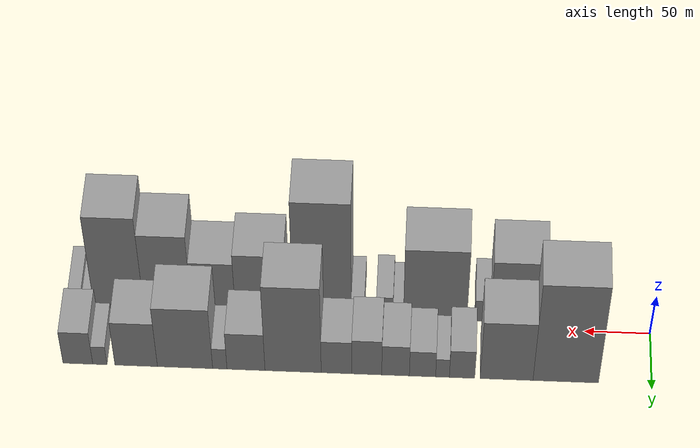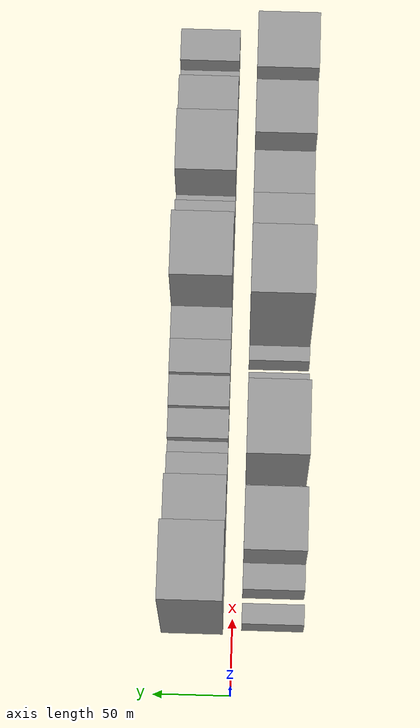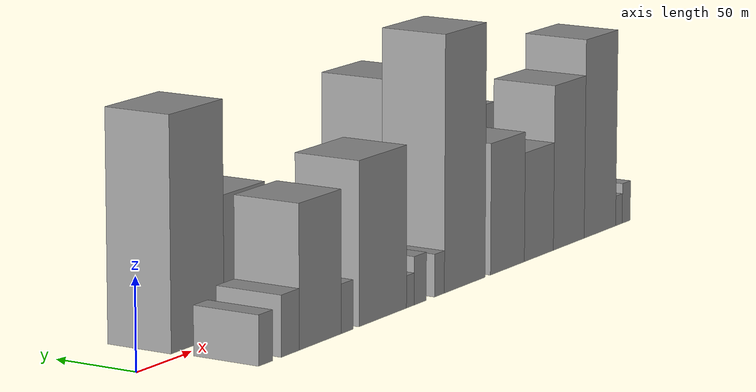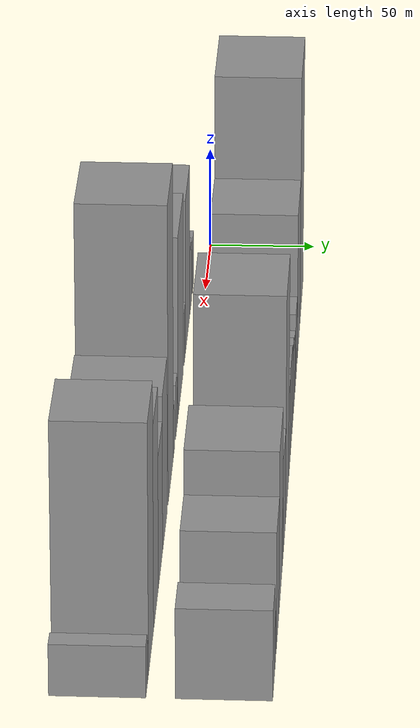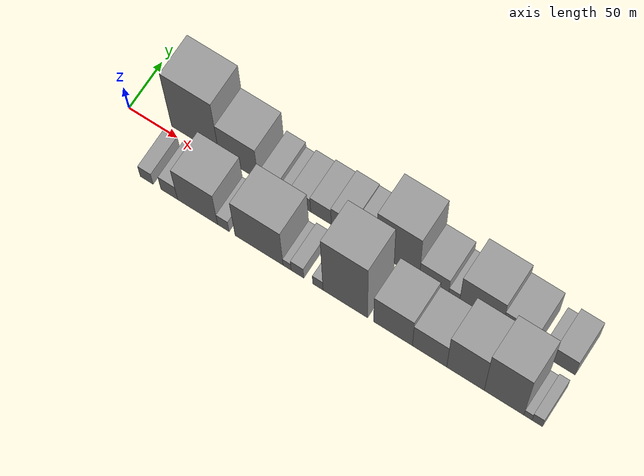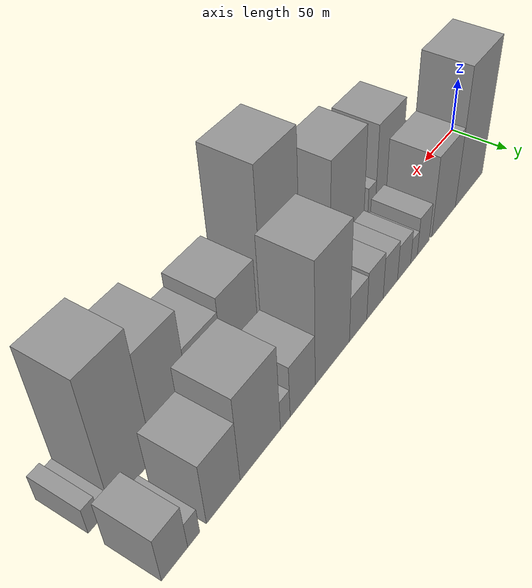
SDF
<sdf version="1.6">
 <world name="default">
  <scene>
   <sky><clouds><speed>12</speed></clouds></sky>
   <ambient>0.4 0.4 0.4 1</ambient>
   <background>0.7 0.7 0.7 1</background>
   <shadows>1</shadows>
  </scene>
  <gravity>0 0 -9.8066</gravity>
  <magnetic_field>6e-06 2.3e-05 -4.2e-05</magnetic_field>
  <physics default="0" name="default_physics" type="ode">
   <ode>
    <solver>
     <type>quick</type>
     <iters>10</iters>
     <sor>1.0</sor>
     <use_dynamic_moi_rescaling>0</use_dynamic_moi_rescaling>
    </solver>
    <constraints>
     <cfm>0</cfm>
     <erp>0.2</erp>
     <contact_max_correcting_vel>100</contact_max_correcting_vel>
     <contact_surface_layer>0.001</contact_surface_layer>
    </constraints>
   </ode>
   <max_step_size>0.004</max_step_size>
   <real_time_factor>1</real_time_factor>
   <real_time_update_rate>250</real_time_update_rate>
  </physics>
  <light name="sun" type="directional">
   <pose>0 0 10 0 0 0</pose>
   <diffuse>0.8 0.8 0.8 1</diffuse>
   <specular>0.2 0.2 0.2 1</specular>
   <attenuation>
    <range>1000</range>
    <constant>0.9</constant>
    <linear>0.01</linear>
    <quadratic>0.001</quadratic>
   </attenuation>
   <direction>-0.5 0.1 -0.9</direction>
  </light>
  <model name="building_1">
   <static>1</static>
   <pose>64.6360 26.0000 0 0.000000 0.000000 1.570796</pose>
   <link name="link">
    <pose>0 0 63.00 0 0 0</pose>
    <collision name="collision"><geometry><box><size>40.0000 49.2719 126.0000</size></box></geometry></collision>
    <visual name="visual">
     <cast_shadows>0</cast_shadows>
     <geometry><box><size>40.0000 49.2719 126.0000</size></box></geometry>
     <material>
      <script>
       <uri>model://grey_wall/materials/scripts</uri>
       <uri>model://grey_wall/materials/textures</uri>
       <name>vrc/grey_wall</name>
      </script>
     </material>
    </visual>
   </link>
  </model>
  <model name="building_2">
   <static>1</static>
   <pose>109.1912 26.0000 0 0.000000 0.000000 1.570796</pose>
   <link name="link">
    <pose>0 0 37.50 0 0 0</pose>
    <collision name="collision"><geometry><box><size>40.0000 39.8385 75.0000</size></box></geometry></collision>
    <visual name="visual">
     <cast_shadows>0</cast_shadows>
     <geometry><box><size>40.0000 39.8385 75.0000</size></box></geometry>
     <material>
      <script>
       <uri>model://grey_wall/materials/scripts</uri>
       <uri>model://grey_wall/materials/textures</uri>
       <name>vrc/grey_wall</name>
      </script>
     </material>
    </visual>
   </link>
  </model>
  <model name="building_3">
   <static>1</static>
   <pose>142.6778 26.0000 0 0.000000 0.000000 1.570796</pose>
   <link name="link">
    <pose>0 0 18.00 0 0 0</pose>
    <collision name="collision"><geometry><box><size>40.0000 19.1346 36.0000</size></box></geometry></collision>
    <visual name="visual">
     <cast_shadows>0</cast_shadows>
     <geometry><box><size>40.0000 19.1346 36.0000</size></box></geometry>
     <material>
      <script>
       <uri>model://grey_wall/materials/scripts</uri>
       <uri>model://grey_wall/materials/textures</uri>
       <name>vrc/grey_wall</name>
      </script>
     </material>
    </visual>
   </link>
  </model>
  <model name="building_4">
   <static>1</static>
   <pose>157.4201 26.0000 0 0.000000 0.000000 1.570796</pose>
   <link name="link">
    <pose>0 0 12.00 0 0 0</pose>
    <collision name="collision"><geometry><box><size>40.0000 10.3500 24.0000</size></box></geometry></collision>
    <visual name="visual">
     <cast_shadows>0</cast_shadows>
     <geometry><box><size>40.0000 10.3500 24.0000</size></box></geometry>
     <material>
      <script>
       <uri>model://grey_wall/materials/scripts</uri>
       <uri>model://grey_wall/materials/textures</uri>
       <name>vrc/grey_wall</name>
      </script>
     </material>
    </visual>
   </link>
  </model>
  <model name="building_5">
   <static>1</static>
   <pose>172.4892 26.0000 0 0.000000 0.000000 1.570796</pose>
   <link name="link">
    <pose>0 0 16.50 0 0 0</pose>
    <collision name="collision"><geometry><box><size>40.0000 19.7883 33.0000</size></box></geometry></collision>
    <visual name="visual">
     <cast_shadows>0</cast_shadows>
     <geometry><box><size>40.0000 19.7883 33.0000</size></box></geometry>
     <material>
      <script>
       <uri>model://grey_wall/materials/scripts</uri>
       <uri>model://grey_wall/materials/textures</uri>
       <name>vrc/grey_wall</name>
      </script>
     </material>
    </visual>
   </link>
  </model>
  <model name="building_6">
   <static>1</static>
   <pose>192.8043 26.0000 0 0.000000 0.000000 1.570796</pose>
   <link name="link">
    <pose>0 0 19.50 0 0 0</pose>
    <collision name="collision"><geometry><box><size>40.0000 20.8419 39.0000</size></box></geometry></collision>
    <visual name="visual">
     <cast_shadows>0</cast_shadows>
     <geometry><box><size>40.0000 20.8419 39.0000</size></box></geometry>
     <material>
      <script>
       <uri>model://grey_wall/materials/scripts</uri>
       <uri>model://grey_wall/materials/textures</uri>
       <name>vrc/grey_wall</name>
      </script>
     </material>
    </visual>
   </link>
  </model>
  <model name="building_7">
   <static>1</static>
   <pose>214.5959 26.0000 0 0.000000 0.000000 1.570796</pose>
   <link name="link">
    <pose>0 0 22.50 0 0 0</pose>
    <collision name="collision"><geometry><box><size>40.0000 22.7412 45.0000</size></box></geometry></collision>
    <visual name="visual">
     <cast_shadows>0</cast_shadows>
     <geometry><box><size>40.0000 22.7412 45.0000</size></box></geometry>
     <material>
      <script>
       <uri>model://grey_wall/materials/scripts</uri>
       <uri>model://grey_wall/materials/textures</uri>
       <name>vrc/grey_wall</name>
      </script>
     </material>
    </visual>
   </link>
  </model>
  <model name="building_8">
   <static>1</static>
   <pose>237.4629 26.0000 0 0.000000 0.000000 1.570796</pose>
   <link name="link">
    <pose>0 0 21.00 0 0 0</pose>
    <collision name="collision"><geometry><box><size>40.0000 22.9928 42.0000</size></box></geometry></collision>
    <visual name="visual">
     <cast_shadows>0</cast_shadows>
     <geometry><box><size>40.0000 22.9928 42.0000</size></box></geometry>
     <material>
      <script>
       <uri>model://grey_wall/materials/scripts</uri>
       <uri>model://grey_wall/materials/textures</uri>
       <name>vrc/grey_wall</name>
      </script>
     </material>
    </visual>
   </link>
  </model>
  <model name="building_9">
   <static>1</static>
   <pose>270.2135 26.0000 0 0.000000 0.000000 1.570796</pose>
   <link name="link">
    <pose>0 0 55.50 0 0 0</pose>
    <collision name="collision"><geometry><box><size>40.0000 42.5083 111.0000</size></box></geometry></collision>
    <visual name="visual">
     <cast_shadows>0</cast_shadows>
     <geometry><box><size>40.0000 42.5083 111.0000</size></box></geometry>
     <material>
      <script>
       <uri>model://grey_wall/materials/scripts</uri>
       <uri>model://grey_wall/materials/textures</uri>
       <name>vrc/grey_wall</name>
      </script>
     </material>
    </visual>
   </link>
  </model>
  <model name="building_10">
   <static>1</static>
   <pose>305.8453 26.0000 0 0.000000 0.000000 1.570796</pose>
   <link name="link">
    <pose>0 0 24.00 0 0 0</pose>
    <collision name="collision"><geometry><box><size>40.0000 28.7553 48.0000</size></box></geometry></collision>
    <visual name="visual">
     <cast_shadows>0</cast_shadows>
     <geometry><box><size>40.0000 28.7553 48.0000</size></box></geometry>
     <material>
      <script>
       <uri>model://grey_wall/materials/scripts</uri>
       <uri>model://grey_wall/materials/textures</uri>
       <name>vrc/grey_wall</name>
      </script>
     </material>
    </visual>
   </link>
  </model>
  <model name="building_11">
   <static>1</static>
   <pose>325.6493 26.0000 0 0.000000 0.000000 1.570796</pose>
   <link name="link">
    <pose>0 0 13.50 0 0 0</pose>
    <collision name="collision"><geometry><box><size>40.0000 10.8528 27.0000</size></box></geometry></collision>
    <visual name="visual">
     <cast_shadows>0</cast_shadows>
     <geometry><box><size>40.0000 10.8528 27.0000</size></box></geometry>
     <material>
      <script>
       <uri>model://grey_wall/materials/scripts</uri>
       <uri>model://grey_wall/materials/textures</uri>
       <name>vrc/grey_wall</name>
      </script>
     </material>
    </visual>
   </link>
  </model>
  <model name="building_12">
   <static>1</static>
   <pose>352.0045 26.0000 0 0.000000 0.000000 1.570796</pose>
   <link name="link">
    <pose>0 0 39.00 0 0 0</pose>
    <collision name="collision"><geometry><box><size>40.0000 41.8576 78.0000</size></box></geometry></collision>
    <visual name="visual">
     <cast_shadows>0</cast_shadows>
     <geometry><box><size>40.0000 41.8576 78.0000</size></box></geometry>
     <material>
      <script>
       <uri>model://grey_wall/materials/scripts</uri>
       <uri>model://grey_wall/materials/textures</uri>
       <name>vrc/grey_wall</name>
      </script>
     </material>
    </visual>
   </link>
  </model>
  <model name="building_13">
   <static>1</static>
   <pose>389.0501 26.0000 0 0.000000 0.000000 1.570796</pose>
   <link name="link">
    <pose>0 0 28.50 0 0 0</pose>
    <collision name="collision"><geometry><box><size>40.0000 32.2337 57.0000</size></box></geometry></collision>
    <visual name="visual">
     <cast_shadows>0</cast_shadows>
     <geometry><box><size>40.0000 32.2337 57.0000</size></box></geometry>
     <material>
      <script>
       <uri>model://grey_wall/materials/scripts</uri>
       <uri>model://grey_wall/materials/textures</uri>
       <name>vrc/grey_wall</name>
      </script>
     </material>
    </visual>
   </link>
  </model>
  <model name="building_14">
   <static>1</static>
   <pose>416.5808 26.0000 0 0.000000 0.000000 1.570796</pose>
   <link name="link">
    <pose>0 0 12.00 0 0 0</pose>
    <collision name="collision"><geometry><box><size>40.0000 10.8277 24.0000</size></box></geometry></collision>
    <visual name="visual">
     <cast_shadows>0</cast_shadows>
     <geometry><box><size>40.0000 10.8277 24.0000</size></box></geometry>
     <material>
      <script>
       <uri>model://grey_wall/materials/scripts</uri>
       <uri>model://grey_wall/materials/textures</uri>
       <name>vrc/grey_wall</name>
      </script>
     </material>
    </visual>
   </link>
  </model>
  <model name="building_15">
   <static>1</static>
   <pose>433.2864 26.0000 0 0.000000 0.000000 1.570796</pose>
   <link name="link">
    <pose>0 0 21.00 0 0 0</pose>
    <collision name="collision"><geometry><box><size>40.0000 22.5835 42.0000</size></box></geometry></collision>
    <visual name="visual">
     <cast_shadows>0</cast_shadows>
     <geometry><box><size>40.0000 22.5835 42.0000</size></box></geometry>
     <material>
      <script>
       <uri>model://grey_wall/materials/scripts</uri>
       <uri>model://grey_wall/materials/textures</uri>
       <name>vrc/grey_wall</name>
      </script>
     </material>
    </visual>
   </link>
  </model>
  <model name="building_16">
   <static>1</static>
   <pose>49.6257 -26.0000 0 0.000000 0.000000 1.570796</pose>
   <link name="link">
    <pose>0 0 13.50 0 0 0</pose>
    <collision name="collision"><geometry><box><size>40.0000 13.2514 27.0000</size></box></geometry></collision>
    <visual name="visual">
     <cast_shadows>0</cast_shadows>
     <geometry><box><size>40.0000 13.2514 27.0000</size></box></geometry>
     <material>
      <script>
       <uri>model://grey_wall/materials/scripts</uri>
       <uri>model://grey_wall/materials/textures</uri>
       <name>vrc/grey_wall</name>
      </script>
     </material>
    </visual>
   </link>
  </model>
  <model name="building_17">
   <static>1</static>
   <pose>72.7817 -26.0000 0 0.000000 0.000000 1.570796</pose>
   <link name="link">
    <pose>0 0 16.50 0 0 0</pose>
    <collision name="collision"><geometry><box><size>40.0000 17.0605 33.0000</size></box></geometry></collision>
    <visual name="visual">
     <cast_shadows>0</cast_shadows>
     <geometry><box><size>40.0000 17.0605 33.0000</size></box></geometry>
     <material>
      <script>
       <uri>model://grey_wall/materials/scripts</uri>
       <uri>model://grey_wall/materials/textures</uri>
       <name>vrc/grey_wall</name>
      </script>
     </material>
    </visual>
   </link>
  </model>
  <model name="building_18">
   <static>1</static>
   <pose>101.8008 -26.0000 0 0.000000 0.000000 1.570796</pose>
   <link name="link">
    <pose>0 0 39.00 0 0 0</pose>
    <collision name="collision"><geometry><box><size>40.0000 40.9778 78.0000</size></box></geometry></collision>
    <visual name="visual">
     <cast_shadows>0</cast_shadows>
     <geometry><box><size>40.0000 40.9778 78.0000</size></box></geometry>
     <material>
      <script>
       <uri>model://grey_wall/materials/scripts</uri>
       <uri>model://grey_wall/materials/textures</uri>
       <name>vrc/grey_wall</name>
      </script>
     </material>
    </visual>
   </link>
  </model>
  <model name="building_19">
   <static>1</static>
   <pose>128.1597 -26.0000 0 0.000000 0.000000 1.570796</pose>
   <link name="link">
    <pose>0 0 13.50 0 0 0</pose>
    <collision name="collision"><geometry><box><size>40.0000 11.7401 27.0000</size></box></geometry></collision>
    <visual name="visual">
     <cast_shadows>0</cast_shadows>
     <geometry><box><size>40.0000 11.7401 27.0000</size></box></geometry>
     <material>
      <script>
       <uri>model://grey_wall/materials/scripts</uri>
       <uri>model://grey_wall/materials/textures</uri>
       <name>vrc/grey_wall</name>
      </script>
     </material>
    </visual>
   </link>
  </model>
  <model name="building_20">
   <static>1</static>
   <pose>164.3150 -26.0000 0 0.000000 0.000000 1.570796</pose>
   <link name="link">
    <pose>0 0 45.00 0 0 0</pose>
    <collision name="collision"><geometry><box><size>40.0000 48.5703 90.0000</size></box></geometry></collision>
    <visual name="visual">
     <cast_shadows>0</cast_shadows>
     <geometry><box><size>40.0000 48.5703 90.0000</size></box></geometry>
     <material>
      <script>
       <uri>model://grey_wall/materials/scripts</uri>
       <uri>model://grey_wall/materials/textures</uri>
       <name>vrc/grey_wall</name>
      </script>
     </material>
    </visual>
   </link>
  </model>
  <model name="building_21">
   <static>1</static>
   <pose>192.6321 -26.0000 0 0.000000 0.000000 1.570796</pose>
   <link name="link">
    <pose>0 0 9.00 0 0 0</pose>
    <collision name="collision"><geometry><box><size>40.0000 8.0640 18.0000</size></box></geometry></collision>
    <visual name="visual">
     <cast_shadows>0</cast_shadows>
     <geometry><box><size>40.0000 8.0640 18.0000</size></box></geometry>
     <material>
      <script>
       <uri>model://grey_wall/materials/scripts</uri>
       <uri>model://grey_wall/materials/textures</uri>
       <name>vrc/grey_wall</name>
      </script>
     </material>
    </visual>
   </link>
  </model>
  <model name="building_22">
   <static>1</static>
   <pose>203.0749 -26.0000 0 0.000000 0.000000 1.570796</pose>
   <link name="link">
    <pose>0 0 13.50 0 0 0</pose>
    <collision name="collision"><geometry><box><size>40.0000 12.8215 27.0000</size></box></geometry></collision>
    <visual name="visual">
     <cast_shadows>0</cast_shadows>
     <geometry><box><size>40.0000 12.8215 27.0000</size></box></geometry>
     <material>
      <script>
       <uri>model://grey_wall/materials/scripts</uri>
       <uri>model://grey_wall/materials/textures</uri>
       <name>vrc/grey_wall</name>
      </script>
     </material>
    </visual>
   </link>
  </model>
  <model name="building_23">
   <static>1</static>
   <pose>223.5918 -26.0000 0 0.000000 0.000000 1.570796</pose>
   <link name="link">
    <pose>0 0 12.00 0 0 0</pose>
    <collision name="collision"><geometry><box><size>40.0000 10.2124 24.0000</size></box></geometry></collision>
    <visual name="visual">
     <cast_shadows>0</cast_shadows>
     <geometry><box><size>40.0000 10.2124 24.0000</size></box></geometry>
     <material>
      <script>
       <uri>model://grey_wall/materials/scripts</uri>
       <uri>model://grey_wall/materials/textures</uri>
       <name>vrc/grey_wall</name>
      </script>
     </material>
    </visual>
   </link>
  </model>
  <model name="building_24">
   <static>1</static>
   <pose>250.9569 -26.0000 0 0.000000 0.000000 1.570796</pose>
   <link name="link">
    <pose>0 0 72.00 0 0 0</pose>
    <collision name="collision"><geometry><box><size>40.0000 44.5178 144.0000</size></box></geometry></collision>
    <visual name="visual">
     <cast_shadows>0</cast_shadows>
     <geometry><box><size>40.0000 44.5178 144.0000</size></box></geometry>
     <material>
      <script>
       <uri>model://grey_wall/materials/scripts</uri>
       <uri>model://grey_wall/materials/textures</uri>
       <name>vrc/grey_wall</name>
      </script>
     </material>
    </visual>
   </link>
  </model>
  <model name="building_25">
   <static>1</static>
   <pose>298.3969 -26.0000 0 0.000000 0.000000 1.570796</pose>
   <link name="link">
    <pose>0 0 37.50 0 0 0</pose>
    <collision name="collision"><geometry><box><size>40.0000 38.3623 75.0000</size></box></geometry></collision>
    <visual name="visual">
     <cast_shadows>0</cast_shadows>
     <geometry><box><size>40.0000 38.3623 75.0000</size></box></geometry>
     <material>
      <script>
       <uri>model://grey_wall/materials/scripts</uri>
       <uri>model://grey_wall/materials/textures</uri>
       <name>vrc/grey_wall</name>
      </script>
     </material>
    </visual>
   </link>
  </model>
  <model name="building_26">
   <static>1</static>
   <pose>334.4190 -26.0000 0 0.000000 0.000000 1.570796</pose>
   <link name="link">
    <pose>0 0 31.50 0 0 0</pose>
    <collision name="collision"><geometry><box><size>40.0000 33.6818 63.0000</size></box></geometry></collision>
    <visual name="visual">
     <cast_shadows>0</cast_shadows>
     <geometry><box><size>40.0000 33.6818 63.0000</size></box></geometry>
     <material>
      <script>
       <uri>model://grey_wall/materials/scripts</uri>
       <uri>model://grey_wall/materials/textures</uri>
       <name>vrc/grey_wall</name>
      </script>
     </material>
    </visual>
   </link>
  </model>
  <model name="building_27">
   <static>1</static>
   <pose>369.5811 -26.0000 0 0.000000 0.000000 1.570796</pose>
   <link name="link">
    <pose>0 0 48.00 0 0 0</pose>
    <collision name="collision"><geometry><box><size>40.0000 36.6423 96.0000</size></box></geometry></collision>
    <visual name="visual">
     <cast_shadows>0</cast_shadows>
     <geometry><box><size>40.0000 36.6423 96.0000</size></box></geometry>
     <material>
      <script>
       <uri>model://grey_wall/materials/scripts</uri>
       <uri>model://grey_wall/materials/textures</uri>
       <name>vrc/grey_wall</name>
      </script>
     </material>
    </visual>
   </link>
  </model>
  <model name="building_28">
   <static>1</static>
   <pose>407.1553 -26.0000 0 0.000000 0.000000 1.570796</pose>
   <link name="link">
    <pose>0 0 58.50 0 0 0</pose>
    <collision name="collision"><geometry><box><size>40.0000 38.5062 117.0000</size></box></geometry></collision>
    <visual name="visual">
     <cast_shadows>0</cast_shadows>
     <geometry><box><size>40.0000 38.5062 117.0000</size></box></geometry>
     <material>
      <script>
       <uri>model://grey_wall/materials/scripts</uri>
       <uri>model://grey_wall/materials/textures</uri>
       <name>vrc/grey_wall</name>
      </script>
     </material>
    </visual>
   </link>
  </model>
  <model name="building_29">
   <static>1</static>
   <pose>430.4188 -26.0000 0 0.000000 0.000000 1.570796</pose>
   <link name="link">
    <pose>0 0 9.00 0 0 0</pose>
    <collision name="collision"><geometry><box><size>40.0000 8.0208 18.0000</size></box></geometry></collision>
    <visual name="visual">
     <cast_shadows>0</cast_shadows>
     <geometry><box><size>40.0000 8.0208 18.0000</size></box></geometry>
     <material>
      <script>
       <uri>model://grey_wall/materials/scripts</uri>
       <uri>model://grey_wall/materials/textures</uri>
       <name>vrc/grey_wall</name>
      </script>
     </material>
    </visual>
   </link>
  </model>
  <model name="building_30">
   <static>1</static>
   <pose>439.4778 -26.0000 0 0.000000 0.000000 1.570796</pose>
   <link name="link">
    <pose>0 0 12.00 0 0 0</pose>
    <collision name="collision"><geometry><box><size>40.0000 10.0971 24.0000</size></box></geometry></collision>
    <visual name="visual">
     <cast_shadows>0</cast_shadows>
     <geometry><box><size>40.0000 10.0971 24.0000</size></box></geometry>
     <material>
      <script>
       <uri>model://grey_wall/materials/scripts</uri>
       <uri>model://grey_wall/materials/textures</uri>
       <name>vrc/grey_wall</name>
      </script>
     </material>
    </visual>
   </link>
  </model>
 </world>
</sdf>
